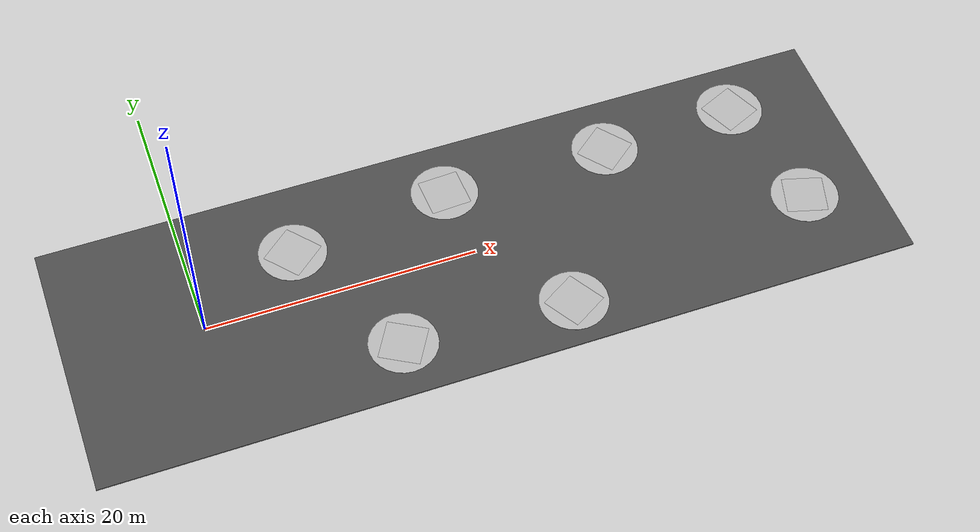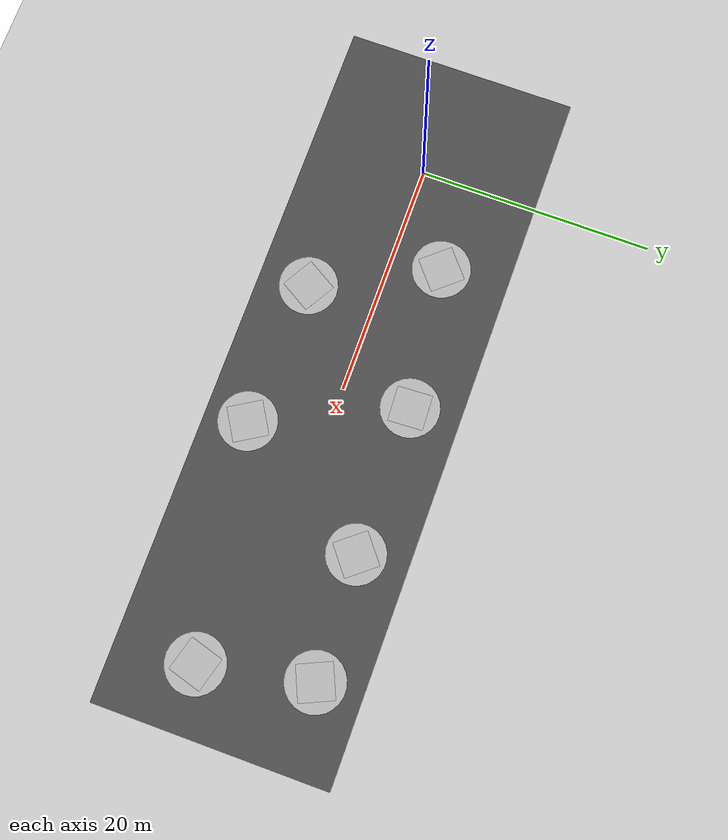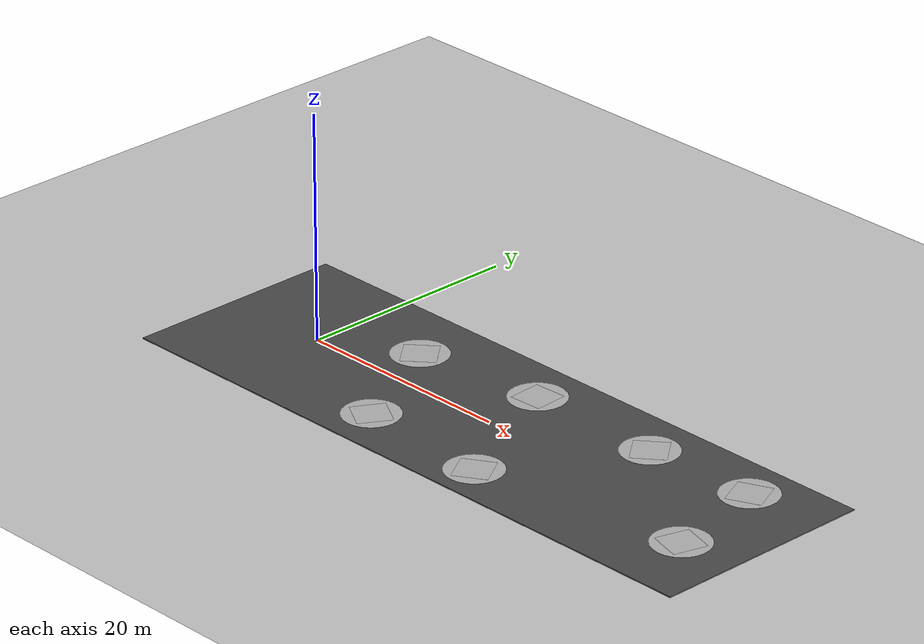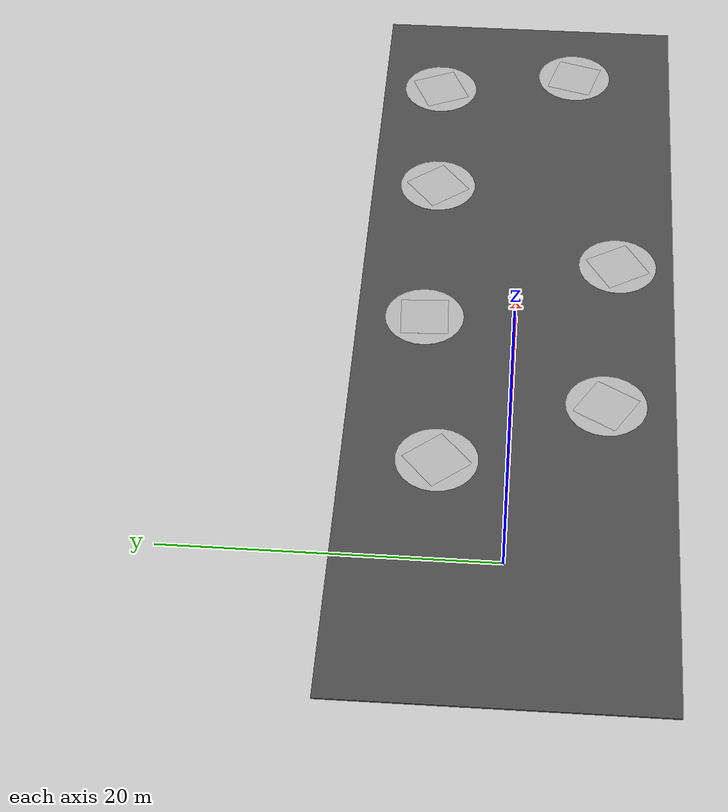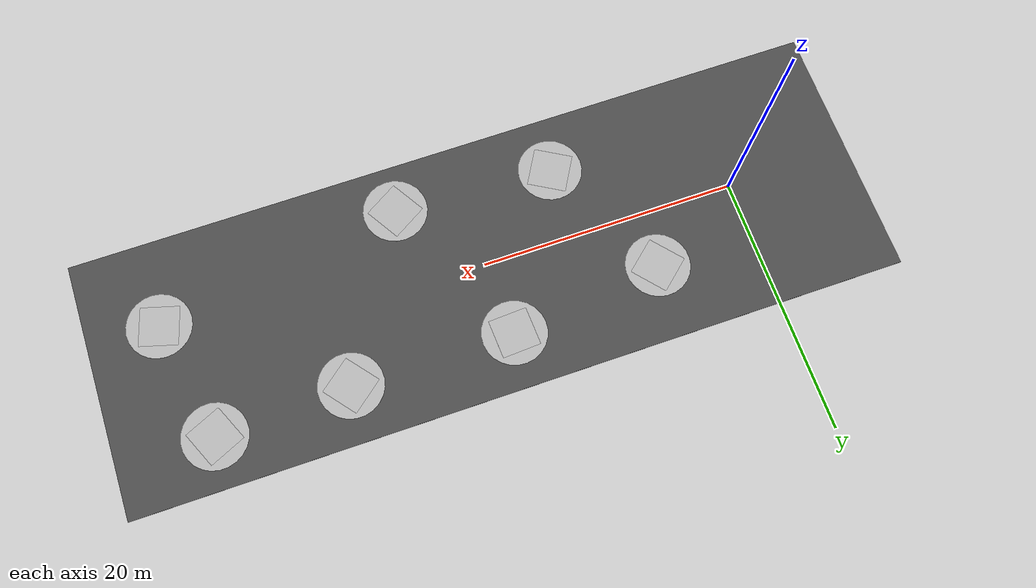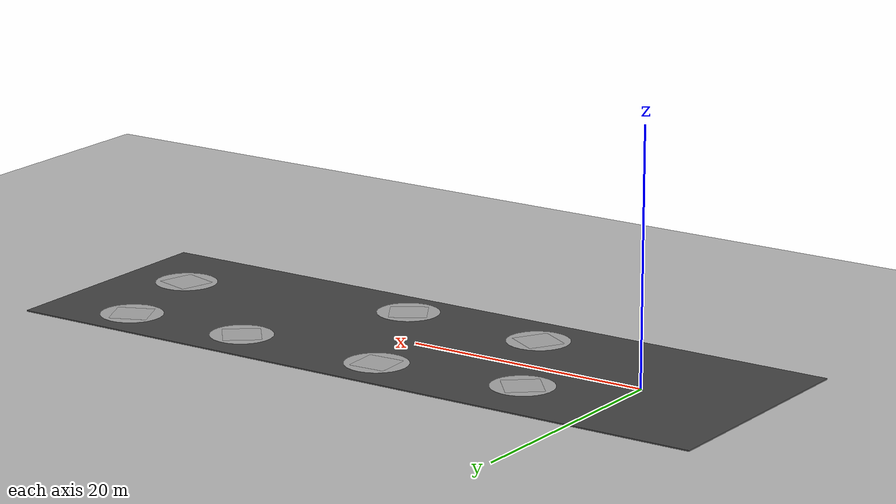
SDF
<sdf version="1.6">
 <world name="default">
  <light name="sun" type="directional">
   <pose>0 0 10 0 -0 0</pose>
   <diffuse>0.8 0.8 0.8 1</diffuse>
   <specular>0.2 0.2 0.2 1</specular>
   <attenuation>
    <range>1000</range>
    <constant>0.9</constant>
    <linear>0.01</linear>
    <quadratic>0.001</quadratic>
   </attenuation>
   <direction>-0.5 0.1 -0.9</direction>
  </light>
  <model name="ground_plane">
   <static>1</static>
   <link name="link">
    <collision name="collision">
     <geometry><plane><normal>0 0 1</normal><size>100 100</size></plane></geometry>
     <surface><friction><ode><mu>100</mu><mu2>50</mu2></ode></friction></surface>
    </collision>
    <visual name="visual">
     <cast_shadows>0</cast_shadows>
     <geometry><plane><normal>0 0 1</normal><size>100 100</size></plane></geometry>
     <material>
      <script><uri>file://media/materials/scripts/gazebo.material</uri><name>Gazebo/Grey</name></script>
     </material>
    </visual>
   </link>
  </model>
  <model name="asphalt_plane">
   <pose>20 0 0 0 -0 0</pose>
   <static>1</static>
   <link name="link">
    <collision name="collision"><geometry><box><size>60 20 0.1</size></box></geometry></collision>
    <visual name="visual">
     <cast_shadows>0</cast_shadows>
     <geometry><box><size>60 20 0.1</size></box></geometry>
     <material>
      <script>
       <uri>model://asphalt_plane/materials/scripts</uri>
       <uri>model://asphalt_plane/materials/textures</uri>
       <name>vrc/asphalt</name>
      </script>
     </material>
    </visual>
   </link>
  </model>
  <model name="landmark_1_1">
   <static>1</static>
   <link name="link1">
    <inertial>
     <mass>0.39</mass>
     <inertia><ixx>0</ixx><ixy>0</ixy><ixz>0</ixz><iyy>0</iyy><iyz>0</iyz><izz>0</izz></inertia>
    </inertial>
    <collision name="collision">
     <geometry><cylinder><radius>2.5</radius><length>0.01</length></cylinder></geometry>
    </collision>
    <visual name="visual">
     <geometry><cylinder><radius>2.5</radius><length>0.01</length></cylinder></geometry>
     <material>
      <script>
       <uri>model://landmark_1/materials/scripts</uri>
       <uri>model://landmark_1/materials/textures</uri>
       <name>Land/Diffuse_1</name>
      </script>
     </material>
    </visual>
   </link>
   <static>1</static>
   <link name="link2">
    <inertial>
     <mass>0.49</mass>
     <inertia><ixx>0</ixx><ixy>0</ixy><ixz>0</ixz><iyy>0</iyy><iyz>0</iyz><izz>0</izz></inertia>
    </inertial>
    <collision name="collision"><geometry><box><size>3 3 0.011</size></box></geometry></collision>
    <visual name="visual">
     <geometry><box><size>3 3 0.011</size></box></geometry>
     <material>
      <script>
       <uri>model://landmark_1/materials/scripts</uri>
       <uri>model://landmark_1/materials/textures</uri>
       <name>Mark/Diffuse_1</name>
      </script>
     </material>
    </visual>
   </link>
   <pose>19.635 5.74933 0.06 0 -0 0.049151</pose>
  </model>
  <model name="landmark_1_2">
   <static>1</static>
   <link name="link1">
    <inertial>
     <mass>0.39</mass>
     <inertia><ixx>0</ixx><ixy>0</ixy><ixz>0</ixz><iyy>0</iyy><iyz>0</iyz><izz>0</izz></inertia>
    </inertial>
    <collision name="collision">
     <geometry><cylinder><radius>2.5</radius><length>0.01</length></cylinder></geometry>
    </collision>
    <visual name="visual">
     <geometry><cylinder><radius>2.5</radius><length>0.01</length></cylinder></geometry>
     <material>
      <script>
       <uri>model://landmark_1/materials/scripts</uri>
       <uri>model://landmark_1/materials/textures</uri>
       <name>Land/Diffuse_1</name>
      </script>
     </material>
    </visual>
   </link>
   <static>1</static>
   <link name="link2">
    <inertial>
     <mass>0.49</mass>
     <inertia><ixx>0</ixx><ixy>0</ixy><ixz>0</ixz><iyy>0</iyy><iyz>0</iyz><izz>0</izz></inertia>
    </inertial>
    <collision name="collision"><geometry><box><size>3 3 0.011</size></box></geometry></collision>
    <visual name="visual">
     <geometry><box><size>3 3 0.011</size></box></geometry>
     <material>
      <script>
       <uri>model://landmark_1/materials/scripts</uri>
       <uri>model://landmark_1/materials/textures</uri>
       <name>Mark/Diffuse_1</name>
      </script>
     </material>
    </visual>
   </link>
   <pose>7.58402 4.25658 0.06 0 0 -0.865947</pose>
  </model>
  <model name="landmark_1_3">
   <static>1</static>
   <link name="link1">
    <inertial>
     <mass>0.39</mass>
     <inertia><ixx>0</ixx><ixy>0</ixy><ixz>0</ixz><iyy>0</iyy><iyz>0</iyz><izz>0</izz></inertia>
    </inertial>
    <collision name="collision">
     <geometry><cylinder><radius>2.5</radius><length>0.01</length></cylinder></geometry>
    </collision>
    <visual name="visual">
     <geometry><cylinder><radius>2.5</radius><length>0.01</length></cylinder></geometry>
     <material>
      <script>
       <uri>model://landmark_1/materials/scripts</uri>
       <uri>model://landmark_1/materials/textures</uri>
       <name>Land/Diffuse_1</name>
      </script>
     </material>
    </visual>
   </link>
   <static>1</static>
   <link name="link2">
    <inertial>
     <mass>0.49</mass>
     <inertia><ixx>0</ixx><ixy>0</ixy><ixz>0</ixz><iyy>0</iyy><iyz>0</iyz><izz>0</izz></inertia>
    </inertial>
    <collision name="collision"><geometry><box><size>3 3 0.011</size></box></geometry></collision>
    <visual name="visual">
     <geometry><box><size>3 3 0.011</size></box></geometry>
     <material>
      <script>
       <uri>model://landmark_1/materials/scripts</uri>
       <uri>model://landmark_1/materials/textures</uri>
       <name>Mark/Diffuse_1</name>
      </script>
     </material>
    </visual>
   </link>
   <pose>42.6658 6.06562 0.06 0 0 -1.15239</pose>
  </model>
  <model name="landmark_1_4">
   <static>1</static>
   <link name="link1">
    <inertial>
     <mass>0.39</mass>
     <inertia><ixx>0</ixx><ixy>0</ixy><ixz>0</ixz><iyy>0</iyy><iyz>0</iyz><izz>0</izz></inertia>
    </inertial>
    <collision name="collision">
     <geometry><cylinder><radius>2.5</radius><length>0.01</length></cylinder></geometry>
    </collision>
    <visual name="visual">
     <geometry><cylinder><radius>2.5</radius><length>0.01</length></cylinder></geometry>
     <material>
      <script>
       <uri>model://landmark_1/materials/scripts</uri>
       <uri>model://landmark_1/materials/textures</uri>
       <name>Land/Diffuse_1</name>
      </script>
     </material>
    </visual>
   </link>
   <static>1</static>
   <link name="link2">
    <inertial>
     <mass>0.49</mass>
     <inertia><ixx>0</ixx><ixy>0</ixy><ixz>0</ixz><iyy>0</iyy><iyz>0</iyz><izz>0</izz></inertia>
    </inertial>
    <collision name="collision"><geometry><box><size>3 3 0.011</size></box></geometry></collision>
    <visual name="visual">
     <geometry><box><size>3 3 0.011</size></box></geometry>
     <material>
      <script>
       <uri>model://landmark_1/materials/scripts</uri>
       <uri>model://landmark_1/materials/textures</uri>
       <name>Mark/Diffuse_1</name>
      </script>
     </material>
    </visual>
   </link>
   <pose>44.5288 -3.29928 0.059996 -7e-06 -6e-06 1.29099</pose>
  </model>
  <model name="landmark_2">
   <static>1</static>
   <link name="link1">
    <inertial>
     <mass>0.39</mass>
     <inertia><ixx>0</ixx><ixy>0</ixy><ixz>0</ixz><iyy>0</iyy><iyz>0</iyz><izz>0</izz></inertia>
    </inertial>
    <collision name="collision">
     <geometry><cylinder><radius>2.5</radius><length>0.01</length></cylinder></geometry>
    </collision>
    <visual name="visual">
     <geometry><cylinder><radius>2.5</radius><length>0.01</length></cylinder></geometry>
     <material>
      <script>
       <uri>model://landmark_2/materials/scripts</uri>
       <uri>model://landmark_2/materials/textures</uri>
       <name>Land/Diffuse_2</name>
      </script>
     </material>
    </visual>
   </link>
   <static>1</static>
   <link name="link2">
    <inertial>
     <mass>0.49</mass>
     <inertia><ixx>0</ixx><ixy>0</ixy><ixz>0</ixz><iyy>0</iyy><iyz>0</iyz><izz>0</izz></inertia>
    </inertial>
    <collision name="collision"><geometry><box><size>3 3 0.011</size></box></geometry></collision>
    <visual name="visual">
     <geometry><box><size>3 3 0.011</size></box></geometry>
     <material>
      <script>
       <uri>model://landmark_2/materials/scripts</uri>
       <uri>model://landmark_2/materials/textures</uri>
       <name>Mark/Diffuse_2</name>
      </script>
     </material>
    </visual>
   </link>
   <pose>25.1113 -6.41431 0.06 0 -0 2.11537</pose>
  </model>
  <model name="landmark_3_1">
   <static>1</static>
   <link name="link1">
    <inertial>
     <mass>0.39</mass>
     <inertia><ixx>0</ixx><ixy>0</ixy><ixz>0</ixz><iyy>0</iyy><iyz>0</iyz><izz>0</izz></inertia>
    </inertial>
    <collision name="collision">
     <geometry><cylinder><radius>2.5</radius><length>0.01</length></cylinder></geometry>
    </collision>
    <visual name="visual">
     <geometry><cylinder><radius>2.5</radius><length>0.01</length></cylinder></geometry>
     <material>
      <script>
       <uri>model://landmark_3/materials/scripts</uri>
       <uri>model://landmark_3/materials/textures</uri>
       <name>Land/Diffuse_3</name>
      </script>
     </material>
    </visual>
   </link>
   <static>1</static>
   <link name="link2">
    <inertial>
     <mass>0.49</mass>
     <inertia><ixx>0</ixx><ixy>0</ixy><ixz>0</ixz><iyy>0</iyy><iyz>0</iyz><izz>0</izz></inertia>
    </inertial>
    <collision name="collision"><geometry><box><size>3 3 0.011</size></box></geometry></collision>
    <visual name="visual">
     <geometry><box><size>3 3 0.011</size></box></geometry>
     <material>
      <script>
       <uri>model://landmark_3/materials/scripts</uri>
       <uri>model://landmark_3/materials/textures</uri>
       <name>Mark/Diffuse_3</name>
      </script>
     </material>
    </visual>
   </link>
   <pose>32.2909 5.65871 0.06 0 -0 0.676559</pose>
  </model>
  <model name="landmark_3_2">
   <static>1</static>
   <link name="link1">
    <inertial>
     <mass>0.39</mass>
     <inertia><ixx>0</ixx><ixy>0</ixy><ixz>0</ixz><iyy>0</iyy><iyz>0</iyz><izz>0</izz></inertia>
    </inertial>
    <collision name="collision">
     <geometry><cylinder><radius>2.5</radius><length>0.01</length></cylinder></geometry>
    </collision>
    <visual name="visual">
     <geometry><cylinder><radius>2.5</radius><length>0.01</length></cylinder></geometry>
     <material>
      <script>
       <uri>model://landmark_3/materials/scripts</uri>
       <uri>model://landmark_3/materials/textures</uri>
       <name>Land/Diffuse_3</name>
      </script>
     </material>
    </visual>
   </link>
   <static>1</static>
   <link name="link2">
    <inertial>
     <mass>0.49</mass>
     <inertia><ixx>0</ixx><ixy>0</ixy><ixz>0</ixz><iyy>0</iyy><iyz>0</iyz><izz>0</izz></inertia>
    </inertial>
    <collision name="collision"><geometry><box><size>3 3 0.011</size></box></geometry></collision>
    <visual name="visual">
     <geometry><box><size>3 3 0.011</size></box></geometry>
     <material>
      <script>
       <uri>model://landmark_3/materials/scripts</uri>
       <uri>model://landmark_3/materials/textures</uri>
       <name>Mark/Diffuse_3</name>
      </script>
     </material>
    </visual>
   </link>
   <pose>12.6589 -5.77184 0.05999 0 -0 2.60971</pose>
  </model>
  <physics name="default_physics" default="0" type="ode">
   <ode>
    <solver>
     <type>quick</type>
     <iters>10</iters>
     <sor>1.3</sor>
     <use_dynamic_moi_rescaling>0</use_dynamic_moi_rescaling>
    </solver>
    <constraints>
     <cfm>0</cfm>
     <erp>0.2</erp>
     <contact_max_correcting_vel>100</contact_max_correcting_vel>
     <contact_surface_layer>0.001</contact_surface_layer>
    </constraints>
   </ode>
   <max_step_size>0.004</max_step_size>
   <real_time_factor>1</real_time_factor>
   <real_time_update_rate>250</real_time_update_rate>
  </physics>
  <gravity>0 0 -9.8066</gravity>
  <magnetic_field>6e-06 2.3e-05 -4.2e-05</magnetic_field>
  <atmosphere type="adiabatic"/>
  <scene><ambient>0.4 0.4 0.4 1</ambient><background>0.7 0.7 0.7 1</background><shadows>1</shadows></scene>
  <spherical_coordinates>
   <surface_model>EARTH_WGS84</surface_model>
   <latitude_deg>0</latitude_deg>
   <longitude_deg>0</longitude_deg>
   <elevation>0</elevation>
   <heading_deg>0</heading_deg>
  </spherical_coordinates>
 </world>
</sdf>
